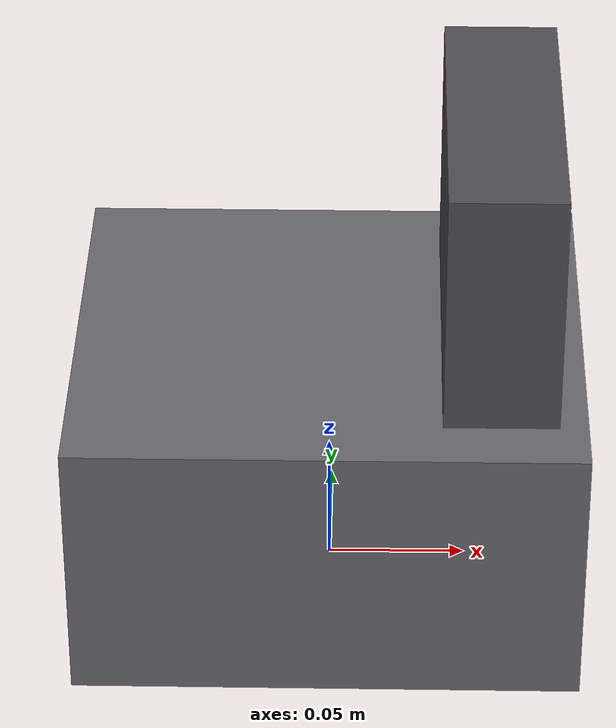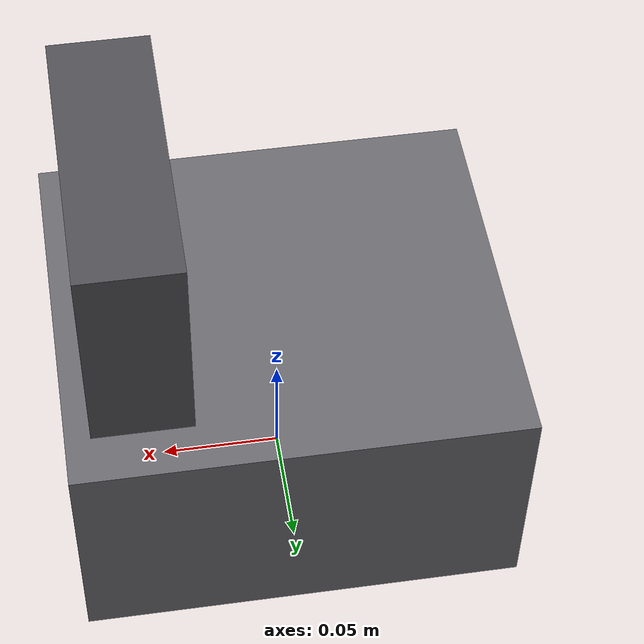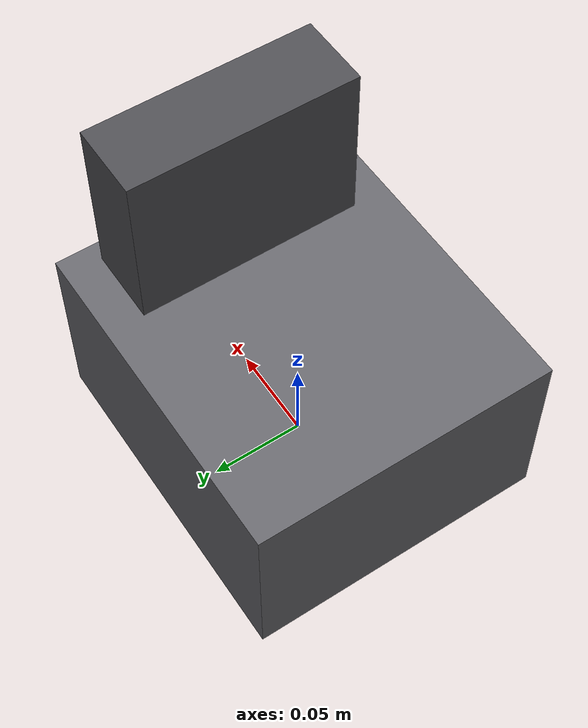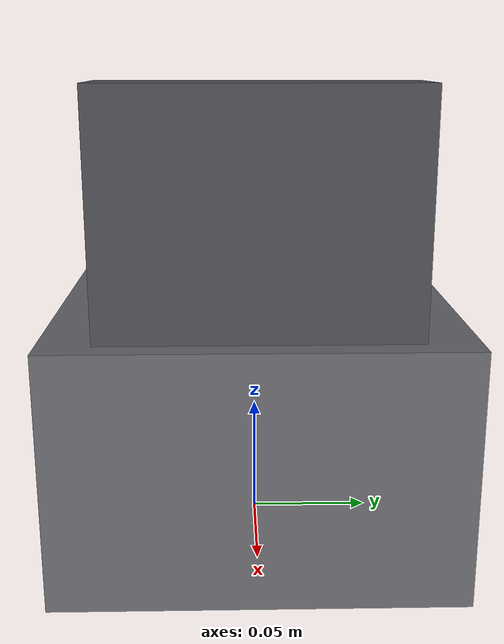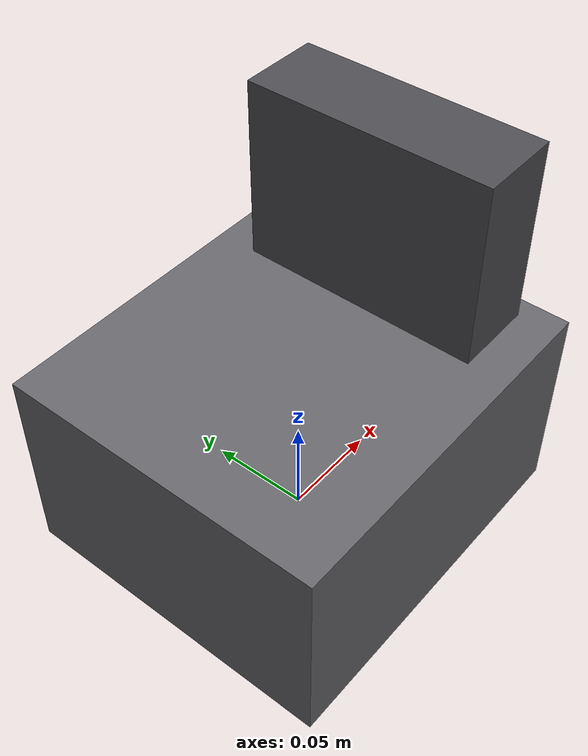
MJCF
<?xml version="1.0" encoding="utf-8"?>
<mujoco model="rock_crusher">
  <compiler angle="radian" autolimits="true"/>
  <default>
    <default class="body"><geom contype="1" conaffinity="1"/></default>
  </default>
  <worldbody>
    <body name="base">
      <geom type="box" size="0.09 0.08 0.05" pos="0 0 0.05" rgba="0.4 0.4 0.42 1" class="body"/>
      <body name="jaw" pos="0.06 0 0.14">
        <joint name="jaw_joint" type="slide" axis="1 0 0" range="0 0.04" damping="1.0" frictionloss="0.3"/>
  <geom type="box" size="0.02 0.06 0.05" pos="0 0 0" rgba="0.3 0.3 0.32 1" class="body"/>
      </body>
    </body>
  </worldbody>
</mujoco>
